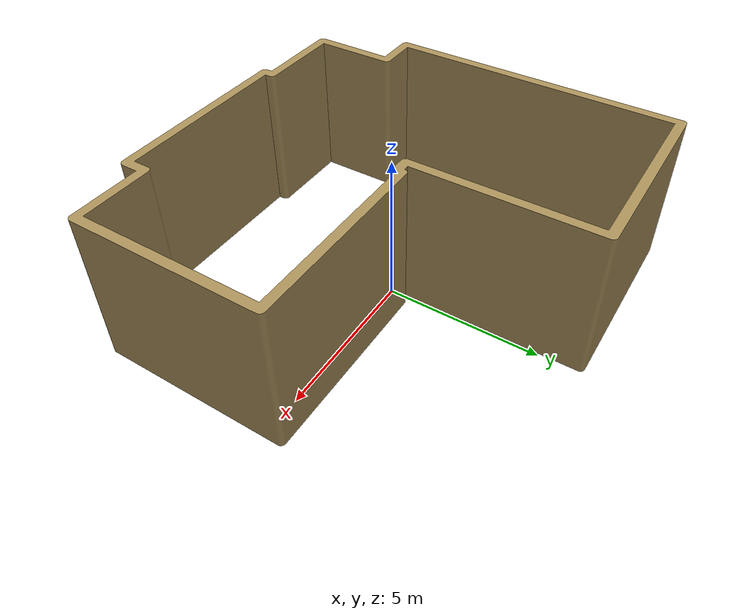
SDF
<?xml version="1.0" ?>
<sdf version="1.6">
  <model name="walls_4">
    <pose frame="">0 0 2.5 0 -0 0</pose>
    <static>1</static>
    <self_collide>0</self_collide>
    <allow_auto_disable>0</allow_auto_disable>
    <link name="mesh">
      <kinematic>0</kinematic>
      <gravity>1</gravity>
      <self_collide>0</self_collide>
      <collision name="collision">
        <geometry>
          <mesh>
            <uri>model://walls_4/meshes/BunVcqelYv.stl</uri>
            <scale>1 1 1</scale>
          </mesh>
        </geometry>
        <pose frame="">-0.791666 -1.30895 -2.5 0 -0 0</pose>
        <max_contacts>20</max_contacts>
      </collision>
      <visual name="visual">
        <geometry>
          <mesh>
            <uri>model://walls_4/meshes/MhZPseygTA.stl</uri>
            <scale>1 1 1</scale>
          </mesh>
        </geometry>
        <material>
          <ambient>0.658824 0.560784 0.34902 1</ambient>
          <diffuse>0.6588235294117647 0.5607843137254902 0.34901960784313724 1</diffuse>
        </material>
        <pose frame="">-0.791666 -1.30895 -2.5 0 -0 0</pose>
        <cast_shadows>1</cast_shadows>
        <transparency>0.0</transparency>
      </visual>
      <pose frame="">0 0 0 0 -0 0</pose>
    </link>
  </model>
</sdf>
